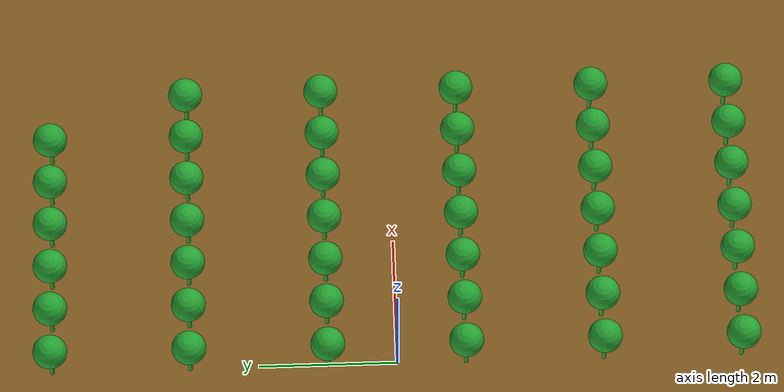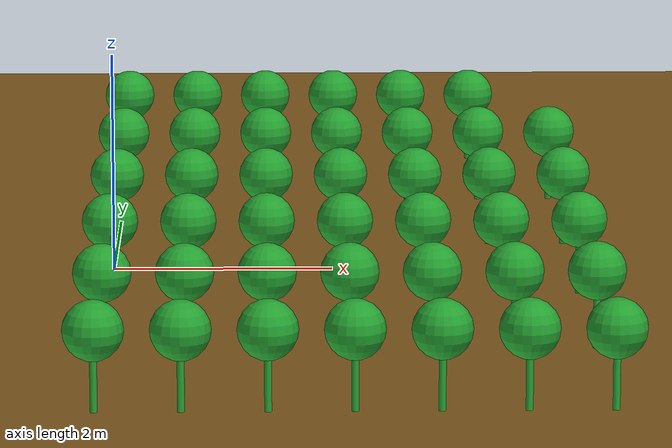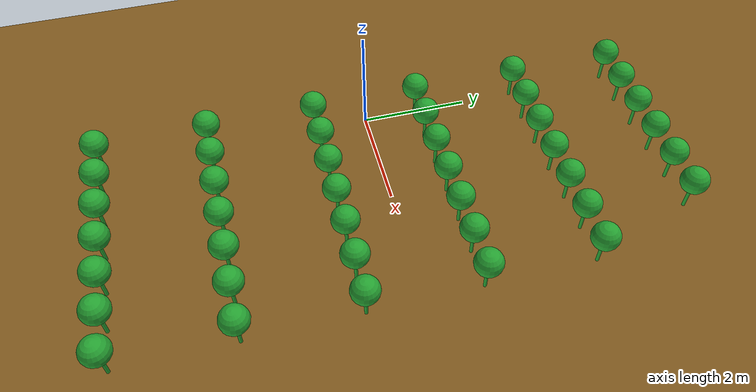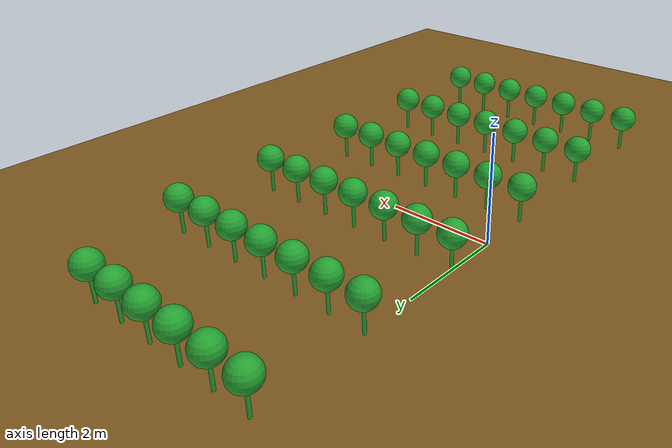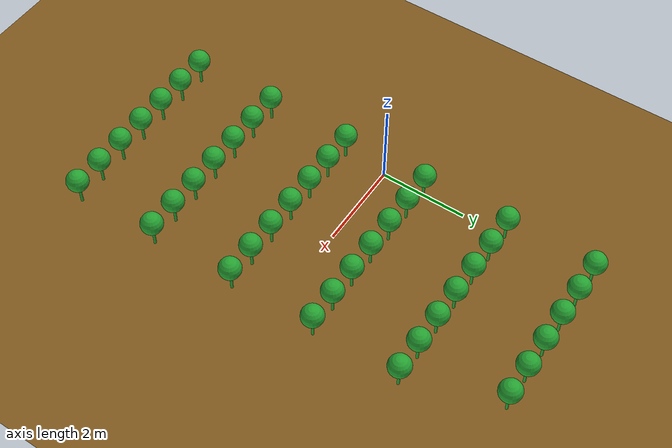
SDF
<sdf version="1.7">
 <world name="crop_field">
  <model name="ground_plane">
   <static>1</static>
   <link name="link">
    <collision name="collision">
     <geometry><plane><normal>0 0 1</normal><size>100 100</size></plane></geometry>
     <surface><friction><ode><mu>100</mu><mu2>50</mu2></ode></friction></surface>
    </collision>
    <visual name="visual">
     <cast_shadows>0</cast_shadows>
     <geometry><plane><normal>0 0 1</normal><size>100 100</size></plane></geometry>
     <material><ambient>0.45 0.30 0.10 1</ambient><diffuse>0.50 0.35 0.12 1</diffuse></material>
    </visual>
   </link>
  </model>
  <model name="row1_plant_00">
   <static>1</static>
   <link name="link">
    <collision name="c">
     <geometry><cylinder><radius>0.05</radius><length>0.8</length></cylinder></geometry>
    </collision>
    <visual name="stem">
     <pose>0 0 -0.125 0 0 0</pose>
     <geometry><cylinder><radius>0.03</radius><length>0.55</length></cylinder></geometry>
     <material>
      <script><uri>file://media/materials/scripts/gazebo.material</uri><name>Gazebo/Green</name></script>
     </material>
    </visual>
    <visual name="canopy">
     <pose>0 0 0.275 0 0 0</pose>
     <geometry><sphere><radius>0.25</radius></sphere></geometry>
     <material>
      <script><uri>file://media/materials/scripts/gazebo.material</uri><name>Gazebo/Green</name></script>
     </material>
    </visual>
   </link>
   <pose>0.0 -5.0 0.4 0 0 0</pose>
  </model>
  <model name="row1_plant_01">
   <static>1</static>
   <link name="link">
    <collision name="c">
     <geometry><cylinder><radius>0.05</radius><length>0.8</length></cylinder></geometry>
    </collision>
    <visual name="stem">
     <pose>0 0 -0.125 0 0 0</pose>
     <geometry><cylinder><radius>0.03</radius><length>0.55</length></cylinder></geometry>
     <material>
      <script><uri>file://media/materials/scripts/gazebo.material</uri><name>Gazebo/Green</name></script>
     </material>
    </visual>
    <visual name="canopy">
     <pose>0 0 0.275 0 0 0</pose>
     <geometry><sphere><radius>0.25</radius></sphere></geometry>
     <material>
      <script><uri>file://media/materials/scripts/gazebo.material</uri><name>Gazebo/Green</name></script>
     </material>
    </visual>
   </link>
   <pose>0.7 -5.0 0.4 0 0 0</pose>
  </model>
  <model name="row1_plant_02">
   <static>1</static>
   <link name="link">
    <collision name="c">
     <geometry><cylinder><radius>0.05</radius><length>0.8</length></cylinder></geometry>
    </collision>
    <visual name="stem">
     <pose>0 0 -0.125 0 0 0</pose>
     <geometry><cylinder><radius>0.03</radius><length>0.55</length></cylinder></geometry>
     <material>
      <script><uri>file://media/materials/scripts/gazebo.material</uri><name>Gazebo/Green</name></script>
     </material>
    </visual>
    <visual name="canopy">
     <pose>0 0 0.275 0 0 0</pose>
     <geometry><sphere><radius>0.25</radius></sphere></geometry>
     <material>
      <script><uri>file://media/materials/scripts/gazebo.material</uri><name>Gazebo/Green</name></script>
     </material>
    </visual>
   </link>
   <pose>1.4 -5.0 0.4 0 0 0</pose>
  </model>
  <model name="row1_plant_03">
   <static>1</static>
   <link name="link">
    <collision name="c">
     <geometry><cylinder><radius>0.05</radius><length>0.8</length></cylinder></geometry>
    </collision>
    <visual name="stem">
     <pose>0 0 -0.125 0 0 0</pose>
     <geometry><cylinder><radius>0.03</radius><length>0.55</length></cylinder></geometry>
     <material>
      <script><uri>file://media/materials/scripts/gazebo.material</uri><name>Gazebo/Green</name></script>
     </material>
    </visual>
    <visual name="canopy">
     <pose>0 0 0.275 0 0 0</pose>
     <geometry><sphere><radius>0.25</radius></sphere></geometry>
     <material>
      <script><uri>file://media/materials/scripts/gazebo.material</uri><name>Gazebo/Green</name></script>
     </material>
    </visual>
   </link>
   <pose>2.1 -5.0 0.4 0 0 0</pose>
  </model>
  <model name="row1_plant_04">
   <static>1</static>
   <link name="link">
    <collision name="c">
     <geometry><cylinder><radius>0.05</radius><length>0.8</length></cylinder></geometry>
    </collision>
    <visual name="stem">
     <pose>0 0 -0.125 0 0 0</pose>
     <geometry><cylinder><radius>0.03</radius><length>0.55</length></cylinder></geometry>
     <material>
      <script><uri>file://media/materials/scripts/gazebo.material</uri><name>Gazebo/Green</name></script>
     </material>
    </visual>
    <visual name="canopy">
     <pose>0 0 0.275 0 0 0</pose>
     <geometry><sphere><radius>0.25</radius></sphere></geometry>
     <material>
      <script><uri>file://media/materials/scripts/gazebo.material</uri><name>Gazebo/Green</name></script>
     </material>
    </visual>
   </link>
   <pose>2.8 -5.0 0.4 0 0 0</pose>
  </model>
  <model name="row1_plant_05">
   <static>1</static>
   <link name="link">
    <collision name="c">
     <geometry><cylinder><radius>0.05</radius><length>0.8</length></cylinder></geometry>
    </collision>
    <visual name="stem">
     <pose>0 0 -0.125 0 0 0</pose>
     <geometry><cylinder><radius>0.03</radius><length>0.55</length></cylinder></geometry>
     <material>
      <script><uri>file://media/materials/scripts/gazebo.material</uri><name>Gazebo/Green</name></script>
     </material>
    </visual>
    <visual name="canopy">
     <pose>0 0 0.275 0 0 0</pose>
     <geometry><sphere><radius>0.25</radius></sphere></geometry>
     <material>
      <script><uri>file://media/materials/scripts/gazebo.material</uri><name>Gazebo/Green</name></script>
     </material>
    </visual>
   </link>
   <pose>3.5 -5.0 0.4 0 0 0</pose>
  </model>
  <model name="row1_plant_06">
   <static>1</static>
   <link name="link">
    <collision name="c">
     <geometry><cylinder><radius>0.05</radius><length>0.8</length></cylinder></geometry>
    </collision>
    <visual name="stem">
     <pose>0 0 -0.125 0 0 0</pose>
     <geometry><cylinder><radius>0.03</radius><length>0.55</length></cylinder></geometry>
     <material>
      <script><uri>file://media/materials/scripts/gazebo.material</uri><name>Gazebo/Green</name></script>
     </material>
    </visual>
    <visual name="canopy">
     <pose>0 0 0.275 0 0 0</pose>
     <geometry><sphere><radius>0.25</radius></sphere></geometry>
     <material>
      <script><uri>file://media/materials/scripts/gazebo.material</uri><name>Gazebo/Green</name></script>
     </material>
    </visual>
   </link>
   <pose>4.2 -5.0 0.4 0 0 0</pose>
  </model>
  <model name="row2_plant_00">
   <static>1</static>
   <link name="link">
    <collision name="c">
     <geometry><cylinder><radius>0.05</radius><length>0.8</length></cylinder></geometry>
    </collision>
    <visual name="stem">
     <pose>0 0 -0.125 0 0 0</pose>
     <geometry><cylinder><radius>0.03</radius><length>0.55</length></cylinder></geometry>
     <material>
      <script><uri>file://media/materials/scripts/gazebo.material</uri><name>Gazebo/Green</name></script>
     </material>
    </visual>
    <visual name="canopy">
     <pose>0 0 0.275 0 0 0</pose>
     <geometry><sphere><radius>0.25</radius></sphere></geometry>
     <material>
      <script><uri>file://media/materials/scripts/gazebo.material</uri><name>Gazebo/Green</name></script>
     </material>
    </visual>
   </link>
   <pose>0.0 -3.0 0.4 0 0 0</pose>
  </model>
  <model name="row2_plant_01">
   <static>1</static>
   <link name="link">
    <collision name="c">
     <geometry><cylinder><radius>0.05</radius><length>0.8</length></cylinder></geometry>
    </collision>
    <visual name="stem">
     <pose>0 0 -0.125 0 0 0</pose>
     <geometry><cylinder><radius>0.03</radius><length>0.55</length></cylinder></geometry>
     <material>
      <script><uri>file://media/materials/scripts/gazebo.material</uri><name>Gazebo/Green</name></script>
     </material>
    </visual>
    <visual name="canopy">
     <pose>0 0 0.275 0 0 0</pose>
     <geometry><sphere><radius>0.25</radius></sphere></geometry>
     <material>
      <script><uri>file://media/materials/scripts/gazebo.material</uri><name>Gazebo/Green</name></script>
     </material>
    </visual>
   </link>
   <pose>0.7 -3.0 0.4 0 0 0</pose>
  </model>
  <model name="row2_plant_02">
   <static>1</static>
   <link name="link">
    <collision name="c">
     <geometry><cylinder><radius>0.05</radius><length>0.8</length></cylinder></geometry>
    </collision>
    <visual name="stem">
     <pose>0 0 -0.125 0 0 0</pose>
     <geometry><cylinder><radius>0.03</radius><length>0.55</length></cylinder></geometry>
     <material>
      <script><uri>file://media/materials/scripts/gazebo.material</uri><name>Gazebo/Green</name></script>
     </material>
    </visual>
    <visual name="canopy">
     <pose>0 0 0.275 0 0 0</pose>
     <geometry><sphere><radius>0.25</radius></sphere></geometry>
     <material>
      <script><uri>file://media/materials/scripts/gazebo.material</uri><name>Gazebo/Green</name></script>
     </material>
    </visual>
   </link>
   <pose>1.4 -3.0 0.4 0 0 0</pose>
  </model>
  <model name="row2_plant_03">
   <static>1</static>
   <link name="link">
    <collision name="c">
     <geometry><cylinder><radius>0.05</radius><length>0.8</length></cylinder></geometry>
    </collision>
    <visual name="stem">
     <pose>0 0 -0.125 0 0 0</pose>
     <geometry><cylinder><radius>0.03</radius><length>0.55</length></cylinder></geometry>
     <material>
      <script><uri>file://media/materials/scripts/gazebo.material</uri><name>Gazebo/Green</name></script>
     </material>
    </visual>
    <visual name="canopy">
     <pose>0 0 0.275 0 0 0</pose>
     <geometry><sphere><radius>0.25</radius></sphere></geometry>
     <material>
      <script><uri>file://media/materials/scripts/gazebo.material</uri><name>Gazebo/Green</name></script>
     </material>
    </visual>
   </link>
   <pose>2.1 -3.0 0.4 0 0 0</pose>
  </model>
  <model name="row2_plant_04">
   <static>1</static>
   <link name="link">
    <collision name="c">
     <geometry><cylinder><radius>0.05</radius><length>0.8</length></cylinder></geometry>
    </collision>
    <visual name="stem">
     <pose>0 0 -0.125 0 0 0</pose>
     <geometry><cylinder><radius>0.03</radius><length>0.55</length></cylinder></geometry>
     <material>
      <script><uri>file://media/materials/scripts/gazebo.material</uri><name>Gazebo/Green</name></script>
     </material>
    </visual>
    <visual name="canopy">
     <pose>0 0 0.275 0 0 0</pose>
     <geometry><sphere><radius>0.25</radius></sphere></geometry>
     <material>
      <script><uri>file://media/materials/scripts/gazebo.material</uri><name>Gazebo/Green</name></script>
     </material>
    </visual>
   </link>
   <pose>2.8 -3.0 0.4 0 0 0</pose>
  </model>
  <model name="row2_plant_05">
   <static>1</static>
   <link name="link">
    <collision name="c">
     <geometry><cylinder><radius>0.05</radius><length>0.8</length></cylinder></geometry>
    </collision>
    <visual name="stem">
     <pose>0 0 -0.125 0 0 0</pose>
     <geometry><cylinder><radius>0.03</radius><length>0.55</length></cylinder></geometry>
     <material>
      <script><uri>file://media/materials/scripts/gazebo.material</uri><name>Gazebo/Green</name></script>
     </material>
    </visual>
    <visual name="canopy">
     <pose>0 0 0.275 0 0 0</pose>
     <geometry><sphere><radius>0.25</radius></sphere></geometry>
     <material>
      <script><uri>file://media/materials/scripts/gazebo.material</uri><name>Gazebo/Green</name></script>
     </material>
    </visual>
   </link>
   <pose>3.5 -3.0 0.4 0 0 0</pose>
  </model>
  <model name="row2_plant_06">
   <static>1</static>
   <link name="link">
    <collision name="c">
     <geometry><cylinder><radius>0.05</radius><length>0.8</length></cylinder></geometry>
    </collision>
    <visual name="stem">
     <pose>0 0 -0.125 0 0 0</pose>
     <geometry><cylinder><radius>0.03</radius><length>0.55</length></cylinder></geometry>
     <material>
      <script><uri>file://media/materials/scripts/gazebo.material</uri><name>Gazebo/Green</name></script>
     </material>
    </visual>
    <visual name="canopy">
     <pose>0 0 0.275 0 0 0</pose>
     <geometry><sphere><radius>0.25</radius></sphere></geometry>
     <material>
      <script><uri>file://media/materials/scripts/gazebo.material</uri><name>Gazebo/Green</name></script>
     </material>
    </visual>
   </link>
   <pose>4.2 -3.0 0.4 0 0 0</pose>
  </model>
  <model name="row3_plant_00">
   <static>1</static>
   <link name="link">
    <collision name="c">
     <geometry><cylinder><radius>0.05</radius><length>0.8</length></cylinder></geometry>
    </collision>
    <visual name="stem">
     <pose>0 0 -0.125 0 0 0</pose>
     <geometry><cylinder><radius>0.03</radius><length>0.55</length></cylinder></geometry>
     <material>
      <script><uri>file://media/materials/scripts/gazebo.material</uri><name>Gazebo/Green</name></script>
     </material>
    </visual>
    <visual name="canopy">
     <pose>0 0 0.275 0 0 0</pose>
     <geometry><sphere><radius>0.25</radius></sphere></geometry>
     <material>
      <script><uri>file://media/materials/scripts/gazebo.material</uri><name>Gazebo/Green</name></script>
     </material>
    </visual>
   </link>
   <pose>0.0 -1.0 0.4 0 0 0</pose>
  </model>
  <model name="row3_plant_01">
   <static>1</static>
   <link name="link">
    <collision name="c">
     <geometry><cylinder><radius>0.05</radius><length>0.8</length></cylinder></geometry>
    </collision>
    <visual name="stem">
     <pose>0 0 -0.125 0 0 0</pose>
     <geometry><cylinder><radius>0.03</radius><length>0.55</length></cylinder></geometry>
     <material>
      <script><uri>file://media/materials/scripts/gazebo.material</uri><name>Gazebo/Green</name></script>
     </material>
    </visual>
    <visual name="canopy">
     <pose>0 0 0.275 0 0 0</pose>
     <geometry><sphere><radius>0.25</radius></sphere></geometry>
     <material>
      <script><uri>file://media/materials/scripts/gazebo.material</uri><name>Gazebo/Green</name></script>
     </material>
    </visual>
   </link>
   <pose>0.7 -1.0 0.4 0 0 0</pose>
  </model>
  <model name="row3_plant_02">
   <static>1</static>
   <link name="link">
    <collision name="c">
     <geometry><cylinder><radius>0.05</radius><length>0.8</length></cylinder></geometry>
    </collision>
    <visual name="stem">
     <pose>0 0 -0.125 0 0 0</pose>
     <geometry><cylinder><radius>0.03</radius><length>0.55</length></cylinder></geometry>
     <material>
      <script><uri>file://media/materials/scripts/gazebo.material</uri><name>Gazebo/Green</name></script>
     </material>
    </visual>
    <visual name="canopy">
     <pose>0 0 0.275 0 0 0</pose>
     <geometry><sphere><radius>0.25</radius></sphere></geometry>
     <material>
      <script><uri>file://media/materials/scripts/gazebo.material</uri><name>Gazebo/Green</name></script>
     </material>
    </visual>
   </link>
   <pose>1.4 -1.0 0.4 0 0 0</pose>
  </model>
  <model name="row3_plant_03">
   <static>1</static>
   <link name="link">
    <collision name="c">
     <geometry><cylinder><radius>0.05</radius><length>0.8</length></cylinder></geometry>
    </collision>
    <visual name="stem">
     <pose>0 0 -0.125 0 0 0</pose>
     <geometry><cylinder><radius>0.03</radius><length>0.55</length></cylinder></geometry>
     <material>
      <script><uri>file://media/materials/scripts/gazebo.material</uri><name>Gazebo/Green</name></script>
     </material>
    </visual>
    <visual name="canopy">
     <pose>0 0 0.275 0 0 0</pose>
     <geometry><sphere><radius>0.25</radius></sphere></geometry>
     <material>
      <script><uri>file://media/materials/scripts/gazebo.material</uri><name>Gazebo/Green</name></script>
     </material>
    </visual>
   </link>
   <pose>2.1 -1.0 0.4 0 0 0</pose>
  </model>
  <model name="row3_plant_04">
   <static>1</static>
   <link name="link">
    <collision name="c">
     <geometry><cylinder><radius>0.05</radius><length>0.8</length></cylinder></geometry>
    </collision>
    <visual name="stem">
     <pose>0 0 -0.125 0 0 0</pose>
     <geometry><cylinder><radius>0.03</radius><length>0.55</length></cylinder></geometry>
     <material>
      <script><uri>file://media/materials/scripts/gazebo.material</uri><name>Gazebo/Green</name></script>
     </material>
    </visual>
    <visual name="canopy">
     <pose>0 0 0.275 0 0 0</pose>
     <geometry><sphere><radius>0.25</radius></sphere></geometry>
     <material>
      <script><uri>file://media/materials/scripts/gazebo.material</uri><name>Gazebo/Green</name></script>
     </material>
    </visual>
   </link>
   <pose>2.8 -1.0 0.4 0 0 0</pose>
  </model>
  <model name="row3_plant_05">
   <static>1</static>
   <link name="link">
    <collision name="c">
     <geometry><cylinder><radius>0.05</radius><length>0.8</length></cylinder></geometry>
    </collision>
    <visual name="stem">
     <pose>0 0 -0.125 0 0 0</pose>
     <geometry><cylinder><radius>0.03</radius><length>0.55</length></cylinder></geometry>
     <material>
      <script><uri>file://media/materials/scripts/gazebo.material</uri><name>Gazebo/Green</name></script>
     </material>
    </visual>
    <visual name="canopy">
     <pose>0 0 0.275 0 0 0</pose>
     <geometry><sphere><radius>0.25</radius></sphere></geometry>
     <material>
      <script><uri>file://media/materials/scripts/gazebo.material</uri><name>Gazebo/Green</name></script>
     </material>
    </visual>
   </link>
   <pose>3.5 -1.0 0.4 0 0 0</pose>
  </model>
  <model name="row3_plant_06">
   <static>1</static>
   <link name="link">
    <collision name="c">
     <geometry><cylinder><radius>0.05</radius><length>0.8</length></cylinder></geometry>
    </collision>
    <visual name="stem">
     <pose>0 0 -0.125 0 0 0</pose>
     <geometry><cylinder><radius>0.03</radius><length>0.55</length></cylinder></geometry>
     <material>
      <script><uri>file://media/materials/scripts/gazebo.material</uri><name>Gazebo/Green</name></script>
     </material>
    </visual>
    <visual name="canopy">
     <pose>0 0 0.275 0 0 0</pose>
     <geometry><sphere><radius>0.25</radius></sphere></geometry>
     <material>
      <script><uri>file://media/materials/scripts/gazebo.material</uri><name>Gazebo/Green</name></script>
     </material>
    </visual>
   </link>
   <pose>4.2 -1.0 0.4 0 0 0</pose>
  </model>
  <model name="row4_plant_00">
   <static>1</static>
   <link name="link">
    <collision name="c">
     <geometry><cylinder><radius>0.05</radius><length>0.8</length></cylinder></geometry>
    </collision>
    <visual name="stem">
     <pose>0 0 -0.125 0 0 0</pose>
     <geometry><cylinder><radius>0.03</radius><length>0.55</length></cylinder></geometry>
     <material>
      <script><uri>file://media/materials/scripts/gazebo.material</uri><name>Gazebo/Green</name></script>
     </material>
    </visual>
    <visual name="canopy">
     <pose>0 0 0.275 0 0 0</pose>
     <geometry><sphere><radius>0.25</radius></sphere></geometry>
     <material>
      <script><uri>file://media/materials/scripts/gazebo.material</uri><name>Gazebo/Green</name></script>
     </material>
    </visual>
   </link>
   <pose>0.0 1.0 0.4 0 0 0</pose>
  </model>
  <model name="row4_plant_01">
   <static>1</static>
   <link name="link">
    <collision name="c">
     <geometry><cylinder><radius>0.05</radius><length>0.8</length></cylinder></geometry>
    </collision>
    <visual name="stem">
     <pose>0 0 -0.125 0 0 0</pose>
     <geometry><cylinder><radius>0.03</radius><length>0.55</length></cylinder></geometry>
     <material>
      <script><uri>file://media/materials/scripts/gazebo.material</uri><name>Gazebo/Green</name></script>
     </material>
    </visual>
    <visual name="canopy">
     <pose>0 0 0.275 0 0 0</pose>
     <geometry><sphere><radius>0.25</radius></sphere></geometry>
     <material>
      <script><uri>file://media/materials/scripts/gazebo.material</uri><name>Gazebo/Green</name></script>
     </material>
    </visual>
   </link>
   <pose>0.7 1.0 0.4 0 0 0</pose>
  </model>
  <model name="row4_plant_02">
   <static>1</static>
   <link name="link">
    <collision name="c">
     <geometry><cylinder><radius>0.05</radius><length>0.8</length></cylinder></geometry>
    </collision>
    <visual name="stem">
     <pose>0 0 -0.125 0 0 0</pose>
     <geometry><cylinder><radius>0.03</radius><length>0.55</length></cylinder></geometry>
     <material>
      <script><uri>file://media/materials/scripts/gazebo.material</uri><name>Gazebo/Green</name></script>
     </material>
    </visual>
    <visual name="canopy">
     <pose>0 0 0.275 0 0 0</pose>
     <geometry><sphere><radius>0.25</radius></sphere></geometry>
     <material>
      <script><uri>file://media/materials/scripts/gazebo.material</uri><name>Gazebo/Green</name></script>
     </material>
    </visual>
   </link>
   <pose>1.4 1.0 0.4 0 0 0</pose>
  </model>
  <model name="row4_plant_03">
   <static>1</static>
   <link name="link">
    <collision name="c">
     <geometry><cylinder><radius>0.05</radius><length>0.8</length></cylinder></geometry>
    </collision>
    <visual name="stem">
     <pose>0 0 -0.125 0 0 0</pose>
     <geometry><cylinder><radius>0.03</radius><length>0.55</length></cylinder></geometry>
     <material>
      <script><uri>file://media/materials/scripts/gazebo.material</uri><name>Gazebo/Green</name></script>
     </material>
    </visual>
    <visual name="canopy">
     <pose>0 0 0.275 0 0 0</pose>
     <geometry><sphere><radius>0.25</radius></sphere></geometry>
     <material>
      <script><uri>file://media/materials/scripts/gazebo.material</uri><name>Gazebo/Green</name></script>
     </material>
    </visual>
   </link>
   <pose>2.1 1.0 0.4 0 0 0</pose>
  </model>
  <model name="row4_plant_04">
   <static>1</static>
   <link name="link">
    <collision name="c">
     <geometry><cylinder><radius>0.05</radius><length>0.8</length></cylinder></geometry>
    </collision>
    <visual name="stem">
     <pose>0 0 -0.125 0 0 0</pose>
     <geometry><cylinder><radius>0.03</radius><length>0.55</length></cylinder></geometry>
     <material>
      <script><uri>file://media/materials/scripts/gazebo.material</uri><name>Gazebo/Green</name></script>
     </material>
    </visual>
    <visual name="canopy">
     <pose>0 0 0.275 0 0 0</pose>
     <geometry><sphere><radius>0.25</radius></sphere></geometry>
     <material>
      <script><uri>file://media/materials/scripts/gazebo.material</uri><name>Gazebo/Green</name></script>
     </material>
    </visual>
   </link>
   <pose>2.8 1.0 0.4 0 0 0</pose>
  </model>
  <model name="row4_plant_05">
   <static>1</static>
   <link name="link">
    <collision name="c">
     <geometry><cylinder><radius>0.05</radius><length>0.8</length></cylinder></geometry>
    </collision>
    <visual name="stem">
     <pose>0 0 -0.125 0 0 0</pose>
     <geometry><cylinder><radius>0.03</radius><length>0.55</length></cylinder></geometry>
     <material>
      <script><uri>file://media/materials/scripts/gazebo.material</uri><name>Gazebo/Green</name></script>
     </material>
    </visual>
    <visual name="canopy">
     <pose>0 0 0.275 0 0 0</pose>
     <geometry><sphere><radius>0.25</radius></sphere></geometry>
     <material>
      <script><uri>file://media/materials/scripts/gazebo.material</uri><name>Gazebo/Green</name></script>
     </material>
    </visual>
   </link>
   <pose>3.5 1.0 0.4 0 0 0</pose>
  </model>
  <model name="row4_plant_06">
   <static>1</static>
   <link name="link">
    <collision name="c">
     <geometry><cylinder><radius>0.05</radius><length>0.8</length></cylinder></geometry>
    </collision>
    <visual name="stem">
     <pose>0 0 -0.125 0 0 0</pose>
     <geometry><cylinder><radius>0.03</radius><length>0.55</length></cylinder></geometry>
     <material>
      <script><uri>file://media/materials/scripts/gazebo.material</uri><name>Gazebo/Green</name></script>
     </material>
    </visual>
    <visual name="canopy">
     <pose>0 0 0.275 0 0 0</pose>
     <geometry><sphere><radius>0.25</radius></sphere></geometry>
     <material>
      <script><uri>file://media/materials/scripts/gazebo.material</uri><name>Gazebo/Green</name></script>
     </material>
    </visual>
   </link>
   <pose>4.2 1.0 0.4 0 0 0</pose>
  </model>
  <model name="row5_plant_00">
   <static>1</static>
   <link name="link">
    <collision name="c">
     <geometry><cylinder><radius>0.05</radius><length>0.8</length></cylinder></geometry>
    </collision>
    <visual name="stem">
     <pose>0 0 -0.125 0 0 0</pose>
     <geometry><cylinder><radius>0.03</radius><length>0.55</length></cylinder></geometry>
     <material>
      <script><uri>file://media/materials/scripts/gazebo.material</uri><name>Gazebo/Green</name></script>
     </material>
    </visual>
    <visual name="canopy">
     <pose>0 0 0.275 0 0 0</pose>
     <geometry><sphere><radius>0.25</radius></sphere></geometry>
     <material>
      <script><uri>file://media/materials/scripts/gazebo.material</uri><name>Gazebo/Green</name></script>
     </material>
    </visual>
   </link>
   <pose>0.0 3.0 0.4 0 0 0</pose>
  </model>
  <model name="row5_plant_01">
   <static>1</static>
   <link name="link">
    <collision name="c">
     <geometry><cylinder><radius>0.05</radius><length>0.8</length></cylinder></geometry>
    </collision>
    <visual name="stem">
     <pose>0 0 -0.125 0 0 0</pose>
     <geometry><cylinder><radius>0.03</radius><length>0.55</length></cylinder></geometry>
     <material>
      <script><uri>file://media/materials/scripts/gazebo.material</uri><name>Gazebo/Green</name></script>
     </material>
    </visual>
    <visual name="canopy">
     <pose>0 0 0.275 0 0 0</pose>
     <geometry><sphere><radius>0.25</radius></sphere></geometry>
     <material>
      <script><uri>file://media/materials/scripts/gazebo.material</uri><name>Gazebo/Green</name></script>
     </material>
    </visual>
   </link>
   <pose>0.7 3.0 0.4 0 0 0</pose>
  </model>
  <model name="row5_plant_02">
   <static>1</static>
   <link name="link">
    <collision name="c">
     <geometry><cylinder><radius>0.05</radius><length>0.8</length></cylinder></geometry>
    </collision>
    <visual name="stem">
     <pose>0 0 -0.125 0 0 0</pose>
     <geometry><cylinder><radius>0.03</radius><length>0.55</length></cylinder></geometry>
     <material>
      <script><uri>file://media/materials/scripts/gazebo.material</uri><name>Gazebo/Green</name></script>
     </material>
    </visual>
    <visual name="canopy">
     <pose>0 0 0.275 0 0 0</pose>
     <geometry><sphere><radius>0.25</radius></sphere></geometry>
     <material>
      <script><uri>file://media/materials/scripts/gazebo.material</uri><name>Gazebo/Green</name></script>
     </material>
    </visual>
   </link>
   <pose>1.4 3.0 0.4 0 0 0</pose>
  </model>
  <model name="row5_plant_03">
   <static>1</static>
   <link name="link">
    <collision name="c">
     <geometry><cylinder><radius>0.05</radius><length>0.8</length></cylinder></geometry>
    </collision>
    <visual name="stem">
     <pose>0 0 -0.125 0 0 0</pose>
     <geometry><cylinder><radius>0.03</radius><length>0.55</length></cylinder></geometry>
     <material>
      <script><uri>file://media/materials/scripts/gazebo.material</uri><name>Gazebo/Green</name></script>
     </material>
    </visual>
    <visual name="canopy">
     <pose>0 0 0.275 0 0 0</pose>
     <geometry><sphere><radius>0.25</radius></sphere></geometry>
     <material>
      <script><uri>file://media/materials/scripts/gazebo.material</uri><name>Gazebo/Green</name></script>
     </material>
    </visual>
   </link>
   <pose>2.1 3.0 0.4 0 0 0</pose>
  </model>
  <model name="row5_plant_04">
   <static>1</static>
   <link name="link">
    <collision name="c">
     <geometry><cylinder><radius>0.05</radius><length>0.8</length></cylinder></geometry>
    </collision>
    <visual name="stem">
     <pose>0 0 -0.125 0 0 0</pose>
     <geometry><cylinder><radius>0.03</radius><length>0.55</length></cylinder></geometry>
     <material>
      <script><uri>file://media/materials/scripts/gazebo.material</uri><name>Gazebo/Green</name></script>
     </material>
    </visual>
    <visual name="canopy">
     <pose>0 0 0.275 0 0 0</pose>
     <geometry><sphere><radius>0.25</radius></sphere></geometry>
     <material>
      <script><uri>file://media/materials/scripts/gazebo.material</uri><name>Gazebo/Green</name></script>
     </material>
    </visual>
   </link>
   <pose>2.8 3.0 0.4 0 0 0</pose>
  </model>
  <model name="row5_plant_05">
   <static>1</static>
   <link name="link">
    <collision name="c">
     <geometry><cylinder><radius>0.05</radius><length>0.8</length></cylinder></geometry>
    </collision>
    <visual name="stem">
     <pose>0 0 -0.125 0 0 0</pose>
     <geometry><cylinder><radius>0.03</radius><length>0.55</length></cylinder></geometry>
     <material>
      <script><uri>file://media/materials/scripts/gazebo.material</uri><name>Gazebo/Green</name></script>
     </material>
    </visual>
    <visual name="canopy">
     <pose>0 0 0.275 0 0 0</pose>
     <geometry><sphere><radius>0.25</radius></sphere></geometry>
     <material>
      <script><uri>file://media/materials/scripts/gazebo.material</uri><name>Gazebo/Green</name></script>
     </material>
    </visual>
   </link>
   <pose>3.5 3.0 0.4 0 0 0</pose>
  </model>
  <model name="row5_plant_06">
   <static>1</static>
   <link name="link">
    <collision name="c">
     <geometry><cylinder><radius>0.05</radius><length>0.8</length></cylinder></geometry>
    </collision>
    <visual name="stem">
     <pose>0 0 -0.125 0 0 0</pose>
     <geometry><cylinder><radius>0.03</radius><length>0.55</length></cylinder></geometry>
     <material>
      <script><uri>file://media/materials/scripts/gazebo.material</uri><name>Gazebo/Green</name></script>
     </material>
    </visual>
    <visual name="canopy">
     <pose>0 0 0.275 0 0 0</pose>
     <geometry><sphere><radius>0.25</radius></sphere></geometry>
     <material>
      <script><uri>file://media/materials/scripts/gazebo.material</uri><name>Gazebo/Green</name></script>
     </material>
    </visual>
   </link>
   <pose>4.2 3.0 0.4 0 0 0</pose>
  </model>
  <model name="row6_plant_00">
   <static>1</static>
   <link name="link">
    <collision name="c">
     <geometry><cylinder><radius>0.05</radius><length>0.8</length></cylinder></geometry>
    </collision>
    <visual name="stem">
     <pose>0 0 -0.125 0 0 0</pose>
     <geometry><cylinder><radius>0.03</radius><length>0.55</length></cylinder></geometry>
     <material>
      <script><uri>file://media/materials/scripts/gazebo.material</uri><name>Gazebo/Green</name></script>
     </material>
    </visual>
    <visual name="canopy">
     <pose>0 0 0.275 0 0 0</pose>
     <geometry><sphere><radius>0.25</radius></sphere></geometry>
     <material>
      <script><uri>file://media/materials/scripts/gazebo.material</uri><name>Gazebo/Green</name></script>
     </material>
    </visual>
   </link>
   <pose>0.0 5.0 0.4 0 0 0</pose>
  </model>
  <model name="row6_plant_01">
   <static>1</static>
   <link name="link">
    <collision name="c">
     <geometry><cylinder><radius>0.05</radius><length>0.8</length></cylinder></geometry>
    </collision>
    <visual name="stem">
     <pose>0 0 -0.125 0 0 0</pose>
     <geometry><cylinder><radius>0.03</radius><length>0.55</length></cylinder></geometry>
     <material>
      <script><uri>file://media/materials/scripts/gazebo.material</uri><name>Gazebo/Green</name></script>
     </material>
    </visual>
    <visual name="canopy">
     <pose>0 0 0.275 0 0 0</pose>
     <geometry><sphere><radius>0.25</radius></sphere></geometry>
     <material>
      <script><uri>file://media/materials/scripts/gazebo.material</uri><name>Gazebo/Green</name></script>
     </material>
    </visual>
   </link>
   <pose>0.7 5.0 0.4 0 0 0</pose>
  </model>
  <model name="row6_plant_02">
   <static>1</static>
   <link name="link">
    <collision name="c">
     <geometry><cylinder><radius>0.05</radius><length>0.8</length></cylinder></geometry>
    </collision>
    <visual name="stem">
     <pose>0 0 -0.125 0 0 0</pose>
     <geometry><cylinder><radius>0.03</radius><length>0.55</length></cylinder></geometry>
     <material>
      <script><uri>file://media/materials/scripts/gazebo.material</uri><name>Gazebo/Green</name></script>
     </material>
    </visual>
    <visual name="canopy">
     <pose>0 0 0.275 0 0 0</pose>
     <geometry><sphere><radius>0.25</radius></sphere></geometry>
     <material>
      <script><uri>file://media/materials/scripts/gazebo.material</uri><name>Gazebo/Green</name></script>
     </material>
    </visual>
   </link>
   <pose>1.4 5.0 0.4 0 0 0</pose>
  </model>
  <model name="row6_plant_03">
   <static>1</static>
   <link name="link">
    <collision name="c">
     <geometry><cylinder><radius>0.05</radius><length>0.8</length></cylinder></geometry>
    </collision>
    <visual name="stem">
     <pose>0 0 -0.125 0 0 0</pose>
     <geometry><cylinder><radius>0.03</radius><length>0.55</length></cylinder></geometry>
     <material>
      <script><uri>file://media/materials/scripts/gazebo.material</uri><name>Gazebo/Green</name></script>
     </material>
    </visual>
    <visual name="canopy">
     <pose>0 0 0.275 0 0 0</pose>
     <geometry><sphere><radius>0.25</radius></sphere></geometry>
     <material>
      <script><uri>file://media/materials/scripts/gazebo.material</uri><name>Gazebo/Green</name></script>
     </material>
    </visual>
   </link>
   <pose>2.1 5.0 0.4 0 0 0</pose>
  </model>
  <model name="row6_plant_04">
   <static>1</static>
   <link name="link">
    <collision name="c">
     <geometry><cylinder><radius>0.05</radius><length>0.8</length></cylinder></geometry>
    </collision>
    <visual name="stem">
     <pose>0 0 -0.125 0 0 0</pose>
     <geometry><cylinder><radius>0.03</radius><length>0.55</length></cylinder></geometry>
     <material>
      <script><uri>file://media/materials/scripts/gazebo.material</uri><name>Gazebo/Green</name></script>
     </material>
    </visual>
    <visual name="canopy">
     <pose>0 0 0.275 0 0 0</pose>
     <geometry><sphere><radius>0.25</radius></sphere></geometry>
     <material>
      <script><uri>file://media/materials/scripts/gazebo.material</uri><name>Gazebo/Green</name></script>
     </material>
    </visual>
   </link>
   <pose>2.8 5.0 0.4 0 0 0</pose>
  </model>
  <model name="row6_plant_05">
   <static>1</static>
   <link name="link">
    <collision name="c">
     <geometry><cylinder><radius>0.05</radius><length>0.8</length></cylinder></geometry>
    </collision>
    <visual name="stem">
     <pose>0 0 -0.125 0 0 0</pose>
     <geometry><cylinder><radius>0.03</radius><length>0.55</length></cylinder></geometry>
     <material>
      <script><uri>file://media/materials/scripts/gazebo.material</uri><name>Gazebo/Green</name></script>
     </material>
    </visual>
    <visual name="canopy">
     <pose>0 0 0.275 0 0 0</pose>
     <geometry><sphere><radius>0.25</radius></sphere></geometry>
     <material>
      <script><uri>file://media/materials/scripts/gazebo.material</uri><name>Gazebo/Green</name></script>
     </material>
    </visual>
   </link>
   <pose>3.5 5.0 0.4 0 0 0</pose>
  </model>
 </world>
</sdf>
